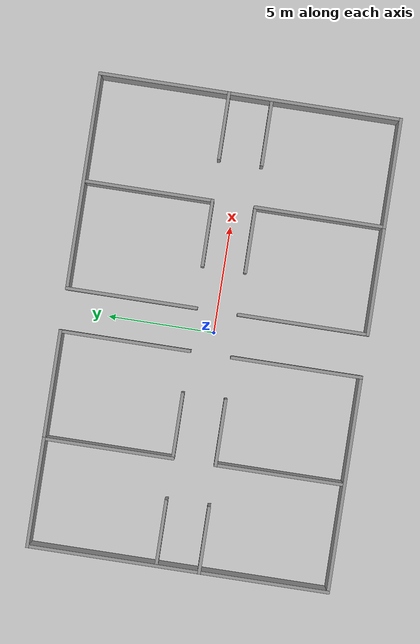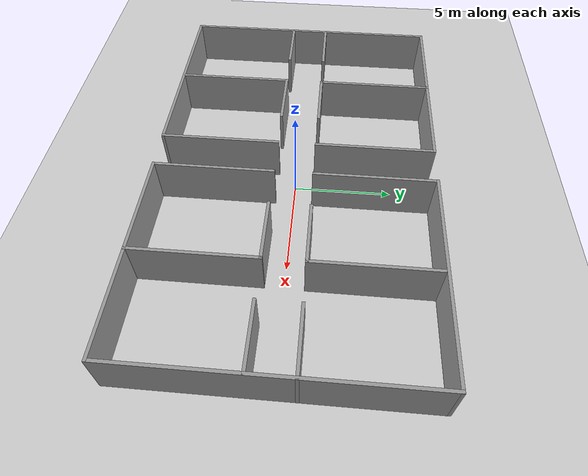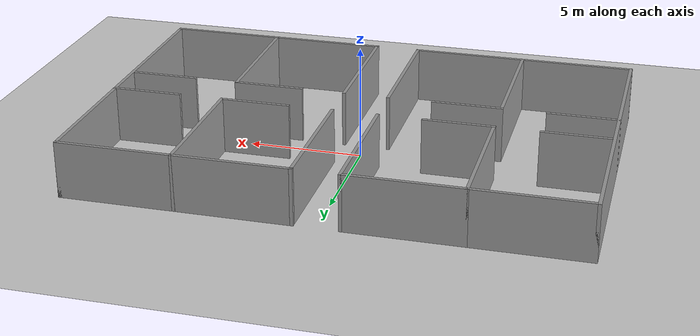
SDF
<?xml version='1.0'?>
<sdf version='1.6'>
  <world name='default'>
    <light name='sun' type='directional'>
      <cast_shadows>1</cast_shadows>
      <pose frame=''>0 0 10 0 -0 0</pose>
      <diffuse>0.8 0.8 0.8 1</diffuse>
      <specular>0.2 0.2 0.2 1</specular>
      <attenuation>
        <range>1000</range>
        <constant>0.9</constant>
        <linear>0.01</linear>
        <quadratic>0.001</quadratic>
      </attenuation>
      <direction>-0.5 0.1 -0.9</direction>
    </light>
<model name='ground_plane'>
      <static>1</static>
      <link name='link'>
        <collision name='collision'>
          <geometry>
            <plane>
              <normal>0 0 1</normal>
              <size>100 100</size>
            </plane>
          </geometry>
          <surface>
            <contact>
              <collide_bitmask>65535</collide_bitmask>
              <ode/>
            </contact>
            <friction>
              <ode>
                <mu>100</mu>
                <mu2>50</mu2>
              </ode>
              <torsional>
                <ode/>
              </torsional>
            </friction>
            <bounce/>
          </surface>
          <max_contacts>10</max_contacts>
        </collision>
        <visual name='visual'>
          <cast_shadows>0</cast_shadows>
          <geometry>
            <plane>
              <normal>0 0 1</normal>
              <size>100 100</size>
            </plane>
          </geometry>
          <material>
            <script>
              <uri>file://media/materials/scripts/gazebo.material</uri>
              <name>Gazebo/Grey</name>
            </script>
          </material>
        </visual>
        <self_collide>0</self_collide>
        <enable_wind>0</enable_wind>
        <kinematic>0</kinematic>
      </link>
    </model>
    <gravity>0 0 -9.8</gravity>
    <magnetic_field>6e-06 2.3e-05 -4.2e-05</magnetic_field>
    <atmosphere type='adiabatic'/>
    <physics name='default_physics' default='0' type='ode'>
      <max_step_size>0.001</max_step_size>
      <real_time_factor>1</real_time_factor>
      <real_time_update_rate>1000</real_time_update_rate>
    </physics>
    <scene>
      <ambient>0.4 0.4 0.4 1</ambient>
      <background>0.7 0.7 0.7 1</background>
      <shadows>1</shadows>
    </scene>
    <wind/>
    <spherical_coordinates>
      <surface_model>EARTH_WGS84</surface_model>
      <latitude_deg>0</latitude_deg>
      <longitude_deg>0</longitude_deg>
      <elevation>0</elevation>
      <heading_deg>0</heading_deg>
    </spherical_coordinates>
  <model name='map'>
    <model name='1'>
      <pose frame=''>-5 0 0 0 -0 0</pose>
      <link name='Wall_0'>
        <collision name='Wall_0_Collision'>
          <geometry>
            <box>
              <size>3.15 0.15 2.5</size>
            </box>
          </geometry>
          <pose frame=''>0 0 1.25 0 -0 0</pose>
        </collision>
        <visual name='Wall_0_Visual'>
          <pose frame=''>0 0 1.25 0 -0 0</pose>
          <geometry>
            <box>
              <size>3.15 0.15 2.5</size>
            </box>
          </geometry>
          <material>
            <script>
              <uri>file://media/materials/scripts/gazebo.material</uri>
              <name>Gazebo/Grey</name>
            </script>
            <ambient>1 1 1 1</ambient>
          </material>
          <meta>
            <layer>0</layer>
          </meta>
        </visual>
        <pose frame=''>-4.5 -1 0 0 -0 0</pose>
      </link>
      <link name='Wall_11'>
        <collision name='Wall_11_Collision'>
          <geometry>
            <box>
              <size>5.15 0.15 2.5</size>
            </box>
          </geometry>
          <pose frame=''>0 0 1.25 0 -0 0</pose>
        </collision>
        <visual name='Wall_11_Visual'>
          <pose frame=''>0 0 1.25 0 -0 0</pose>
          <geometry>
            <box>
              <size>5.15 0.15 2.5</size>
            </box>
          </geometry>
          <material>
            <script>
              <uri>file://media/materials/scripts/gazebo.material</uri>
              <name>Gazebo/Grey</name>
            </script>
            <ambient>1 1 1 1</ambient>
          </material>
          <meta>
            <layer>0</layer>
          </meta>
        </visual>
        <pose frame=''>-3.5 7 0 0 -0 0</pose>
      </link>
      <link name='Wall_12'>
        <collision name='Wall_12_Collision'>
          <geometry>
            <box>
              <size>6.15 0.15 2.5</size>
            </box>
          </geometry>
          <pose frame=''>0 0 1.25 0 -0 0</pose>
        </collision>
        <visual name='Wall_12_Visual'>
          <pose frame=''>0 0 1.25 0 -0 0</pose>
          <geometry>
            <box>
              <size>6.15 0.15 2.5</size>
            </box>
          </geometry>
          <material>
            <script>
              <uri>file://media/materials/scripts/gazebo.material</uri>
              <name>Gazebo/Grey</name>
            </script>
            <ambient>1 1 1 1</ambient>
          </material>
          <meta>
            <layer>0</layer>
          </meta>
        </visual>
        <pose frame=''>-1 4 0 0 -0 -1.5708</pose>
      </link>
      <link name='Wall_14'>
        <collision name='Wall_14_Collision'>
          <geometry>
            <box>
              <size>3.15 0.15 2.5</size>
            </box>
          </geometry>
          <pose frame=''>0 0 1.25 0 -0 0</pose>
        </collision>
        <visual name='Wall_14_Visual'>
          <pose frame=''>0 0 1.25 0 -0 0</pose>
          <geometry>
            <box>
              <size>3.15 0.15 2.5</size>
            </box>
          </geometry>
          <material>
            <script>
              <uri>file://media/materials/scripts/gazebo.material</uri>
              <name>Gazebo/Grey</name>
            </script>
            <ambient>1 1 1 1</ambient>
          </material>
          <meta>
            <layer>0</layer>
          </meta>
        </visual>
        <pose frame=''>0.5 1 0 0 -0 0</pose>
      </link>
      <link name='Wall_16'>
        <collision name='Wall_16_Collision'>
          <geometry>
            <box>
              <size>3.15 0.15 2.5</size>
            </box>
          </geometry>
          <pose frame=''>0 0 1.25 0 -0 0</pose>
        </collision>
        <visual name='Wall_16_Visual'>
          <pose frame=''>0 0 1.25 0 -0 0</pose>
          <geometry>
            <box>
              <size>3.15 0.15 2.5</size>
            </box>
          </geometry>
          <material>
            <script>
              <uri>file://media/materials/scripts/gazebo.material</uri>
              <name>Gazebo/Grey</name>
            </script>
            <ambient>1 1 1 1</ambient>
          </material>
          <meta>
            <layer>0</layer>
          </meta>
        </visual>
        <pose frame=''>0.5 -1 0 0 -0 0</pose>
      </link>
      <link name='Wall_18'>
        <collision name='Wall_18_Collision'>
          <geometry>
            <box>
              <size>5.15 0.15 2.5</size>
            </box>
          </geometry>
          <pose frame=''>0 0 1.25 0 -0 0</pose>
        </collision>
        <visual name='Wall_18_Visual'>
          <pose frame=''>0 0 1.25 0 -0 0</pose>
          <geometry>
            <box>
              <size>5.15 0.15 2.5</size>
            </box>
          </geometry>
          <material>
            <script>
              <uri>file://media/materials/scripts/gazebo.material</uri>
              <name>Gazebo/Grey</name>
            </script>
            <ambient>1 1 1 1</ambient>
          </material>
          <meta>
            <layer>0</layer>
          </meta>
        </visual>
        <pose frame=''>1.5 7 0 0 -0 0</pose>
      </link>
      <link name='Wall_2'>
        <collision name='Wall_2_Collision'>
          <geometry>
            <box>
              <size>14.15 0.15 2.5</size>
            </box>
          </geometry>
          <pose frame=''>0 0 1.25 0 -0 0</pose>
        </collision>
        <visual name='Wall_2_Visual'>
          <pose frame=''>0 0 1.25 0 -0 0</pose>
          <geometry>
            <box>
              <size>14.15 0.15 2.5</size>
            </box>
          </geometry>
          <material>
            <script>
              <uri>file://media/materials/scripts/gazebo.material</uri>
              <name>Gazebo/Grey</name>
            </script>
            <ambient>1 1 1 1</ambient>
          </material>
          <meta>
            <layer>0</layer>
          </meta>
        </visual>
        <pose frame=''>-6 0 0 0 -0 1.5708</pose>
      </link>
      <link name='Wall_20'>
        <collision name='Wall_20_Collision'>
          <geometry>
            <box>
              <size>6.15 0.15 2.5</size>
            </box>
          </geometry>
          <pose frame=''>0 0 1.25 0 -0 0</pose>
        </collision>
        <visual name='Wall_20_Visual'>
          <pose frame=''>0 0 1.25 0 -0 0</pose>
          <geometry>
            <box>
              <size>6.15 0.15 2.5</size>
            </box>
          </geometry>
          <material>
            <script>
              <uri>file://media/materials/scripts/gazebo.material</uri>
              <name>Gazebo/Grey</name>
            </script>
            <ambient>1 1 1 1</ambient>
          </material>
          <meta>
            <layer>0</layer>
          </meta>
        </visual>
        <pose frame=''>4 4 0 0 -0 -1.5708</pose>
      </link>
      <link name='Wall_22'>
        <collision name='Wall_22_Collision'>
          <geometry>
            <box>
              <size>6.15 0.15 2.5</size>
            </box>
          </geometry>
          <pose frame=''>0 0 1.25 0 -0 0</pose>
        </collision>
        <visual name='Wall_22_Visual'>
          <pose frame=''>0 0 1.25 0 -0 0</pose>
          <geometry>
            <box>
              <size>6.15 0.15 2.5</size>
            </box>
          </geometry>
          <material>
            <script>
              <uri>file://media/materials/scripts/gazebo.material</uri>
              <name>Gazebo/Grey</name>
            </script>
            <ambient>1 1 1 1</ambient>
          </material>
          <meta>
            <layer>0</layer>
          </meta>
        </visual>
        <pose frame=''>4 -4 0 0 -0 -1.5708</pose>
      </link>
      <link name='Wall_4'>
        <collision name='Wall_4_Collision'>
          <geometry>
            <box>
              <size>3.15 0.15 2.5</size>
            </box>
          </geometry>
          <pose frame=''>0 0 1.25 0 -0 0</pose>
        </collision>
        <visual name='Wall_4_Visual'>
          <pose frame=''>0 0 1.25 0 -0 0</pose>
          <geometry>
            <box>
              <size>3.15 0.15 2.5</size>
            </box>
          </geometry>
          <material>
            <script>
              <uri>file://media/materials/scripts/gazebo.material</uri>
              <name>Gazebo/Grey</name>
            </script>
            <ambient>1 1 1 1</ambient>
          </material>
          <meta>
            <layer>0</layer>
          </meta>
        </visual>
        <pose frame=''>-4.5 1 0 0 -0 0</pose>
      </link>
      <link name='Wall_6'>
        <collision name='Wall_6_Collision'>
          <geometry>
            <box>
              <size>10.15 0.15 2.5</size>
            </box>
          </geometry>
          <pose frame=''>0 0 1.25 0 -0 0</pose>
        </collision>
        <visual name='Wall_6_Visual'>
          <pose frame=''>0 0 1.25 0 -0 0</pose>
          <geometry>
            <box>
              <size>10.15 0.15 2.5</size>
            </box>
          </geometry>
          <material>
            <script>
              <uri>file://media/materials/scripts/gazebo.material</uri>
              <name>Gazebo/Grey</name>
            </script>
            <ambient>1 1 1 1</ambient>
          </material>
          <meta>
            <layer>0</layer>
          </meta>
        </visual>
        <pose frame=''>-1 -7 0 0 -0 0</pose>
      </link>
      <link name='Wall_9'>
        <collision name='Wall_9_Collision'>
          <geometry>
            <box>
              <size>6.15 0.15 2.5</size>
            </box>
          </geometry>
          <pose frame=''>0 0 1.25 0 -0 0</pose>
        </collision>
        <visual name='Wall_9_Visual'>
          <pose frame=''>0 0 1.25 0 -0 0</pose>
          <geometry>
            <box>
              <size>6.15 0.15 2.5</size>
            </box>
          </geometry>
          <material>
            <script>
              <uri>file://media/materials/scripts/gazebo.material</uri>
              <name>Gazebo/Grey</name>
            </script>
            <ambient>1 1 1 1</ambient>
          </material>
          <meta>
            <layer>0</layer>
          </meta>
        </visual>
        <pose frame=''>-1 -4 0 0 -0 1.5708</pose>
      </link>
      <static>1</static>
    </model>
    <model name='1_0'>
      <pose frame=''>5 0 0 0 -0 3.14159</pose>
      <link name='Wall_0'>
        <collision name='Wall_0_Collision'>
          <geometry>
            <box>
              <size>3.15 0.15 2.5</size>
            </box>
          </geometry>
          <pose frame=''>0 0 1.25 0 -0 0</pose>
        </collision>
        <visual name='Wall_0_Visual'>
          <pose frame=''>0 0 1.25 0 -0 0</pose>
          <geometry>
            <box>
              <size>3.15 0.15 2.5</size>
            </box>
          </geometry>
          <material>
            <script>
              <uri>file://media/materials/scripts/gazebo.material</uri>
              <name>Gazebo/Grey</name>
            </script>
            <ambient>1 1 1 1</ambient>
          </material>
          <meta>
            <layer>0</layer>
          </meta>
        </visual>
        <pose frame=''>-4.5 -1 0 0 -0 0</pose>
      </link>
      <link name='Wall_11'>
        <collision name='Wall_11_Collision'>
          <geometry>
            <box>
              <size>5.15 0.15 2.5</size>
            </box>
          </geometry>
          <pose frame=''>0 0 1.25 0 -0 0</pose>
        </collision>
        <visual name='Wall_11_Visual'>
          <pose frame=''>0 0 1.25 0 -0 0</pose>
          <geometry>
            <box>
              <size>5.15 0.15 2.5</size>
            </box>
          </geometry>
          <material>
            <script>
              <uri>file://media/materials/scripts/gazebo.material</uri>
              <name>Gazebo/Grey</name>
            </script>
            <ambient>1 1 1 1</ambient>
          </material>
          <meta>
            <layer>0</layer>
          </meta>
        </visual>
        <pose frame=''>-3.5 7 0 0 -0 0</pose>
      </link>
      <link name='Wall_12'>
        <collision name='Wall_12_Collision'>
          <geometry>
            <box>
              <size>6.15 0.15 2.5</size>
            </box>
          </geometry>
          <pose frame=''>0 0 1.25 0 -0 0</pose>
        </collision>
        <visual name='Wall_12_Visual'>
          <pose frame=''>0 0 1.25 0 -0 0</pose>
          <geometry>
            <box>
              <size>6.15 0.15 2.5</size>
            </box>
          </geometry>
          <material>
            <script>
              <uri>file://media/materials/scripts/gazebo.material</uri>
              <name>Gazebo/Grey</name>
            </script>
            <ambient>1 1 1 1</ambient>
          </material>
          <meta>
            <layer>0</layer>
          </meta>
        </visual>
        <pose frame=''>-1 4 0 0 -0 -1.5708</pose>
      </link>
      <link name='Wall_14'>
        <collision name='Wall_14_Collision'>
          <geometry>
            <box>
              <size>3.15 0.15 2.5</size>
            </box>
          </geometry>
          <pose frame=''>0 0 1.25 0 -0 0</pose>
        </collision>
        <visual name='Wall_14_Visual'>
          <pose frame=''>0 0 1.25 0 -0 0</pose>
          <geometry>
            <box>
              <size>3.15 0.15 2.5</size>
            </box>
          </geometry>
          <material>
            <script>
              <uri>file://media/materials/scripts/gazebo.material</uri>
              <name>Gazebo/Grey</name>
            </script>
            <ambient>1 1 1 1</ambient>
          </material>
          <meta>
            <layer>0</layer>
          </meta>
        </visual>
        <pose frame=''>0.5 1 0 0 -0 0</pose>
      </link>
      <link name='Wall_16'>
        <collision name='Wall_16_Collision'>
          <geometry>
            <box>
              <size>3.15 0.15 2.5</size>
            </box>
          </geometry>
          <pose frame=''>0 0 1.25 0 -0 0</pose>
        </collision>
        <visual name='Wall_16_Visual'>
          <pose frame=''>0 0 1.25 0 -0 0</pose>
          <geometry>
            <box>
              <size>3.15 0.15 2.5</size>
            </box>
          </geometry>
          <material>
            <script>
              <uri>file://media/materials/scripts/gazebo.material</uri>
              <name>Gazebo/Grey</name>
            </script>
            <ambient>1 1 1 1</ambient>
          </material>
          <meta>
            <layer>0</layer>
          </meta>
        </visual>
        <pose frame=''>0.5 -1 0 0 -0 0</pose>
      </link>
      <link name='Wall_18'>
        <collision name='Wall_18_Collision'>
          <geometry>
            <box>
              <size>5.15 0.15 2.5</size>
            </box>
          </geometry>
          <pose frame=''>0 0 1.25 0 -0 0</pose>
        </collision>
        <visual name='Wall_18_Visual'>
          <pose frame=''>0 0 1.25 0 -0 0</pose>
          <geometry>
            <box>
              <size>5.15 0.15 2.5</size>
            </box>
          </geometry>
          <material>
            <script>
              <uri>file://media/materials/scripts/gazebo.material</uri>
              <name>Gazebo/Grey</name>
            </script>
            <ambient>1 1 1 1</ambient>
          </material>
          <meta>
            <layer>0</layer>
          </meta>
        </visual>
        <pose frame=''>1.5 7 0 0 -0 0</pose>
      </link>
      <link name='Wall_2'>
        <collision name='Wall_2_Collision'>
          <geometry>
            <box>
              <size>14.15 0.15 2.5</size>
            </box>
          </geometry>
          <pose frame=''>0 0 1.25 0 -0 0</pose>
        </collision>
        <visual name='Wall_2_Visual'>
          <pose frame=''>0 0 1.25 0 -0 0</pose>
          <geometry>
            <box>
              <size>14.15 0.15 2.5</size>
            </box>
          </geometry>
          <material>
            <script>
              <uri>file://media/materials/scripts/gazebo.material</uri>
              <name>Gazebo/Grey</name>
            </script>
            <ambient>1 1 1 1</ambient>
          </material>
          <meta>
            <layer>0</layer>
          </meta>
        </visual>
        <pose frame=''>-6 0 0 0 -0 1.5708</pose>
      </link>
      <link name='Wall_20'>
        <collision name='Wall_20_Collision'>
          <geometry>
            <box>
              <size>6.15 0.15 2.5</size>
            </box>
          </geometry>
          <pose frame=''>0 0 1.25 0 -0 0</pose>
        </collision>
        <visual name='Wall_20_Visual'>
          <pose frame=''>0 0 1.25 0 -0 0</pose>
          <geometry>
            <box>
              <size>6.15 0.15 2.5</size>
            </box>
          </geometry>
          <material>
            <script>
              <uri>file://media/materials/scripts/gazebo.material</uri>
              <name>Gazebo/Grey</name>
            </script>
            <ambient>1 1 1 1</ambient>
          </material>
          <meta>
            <layer>0</layer>
          </meta>
        </visual>
        <pose frame=''>4 4 0 0 -0 -1.5708</pose>
      </link>
      <link name='Wall_22'>
        <collision name='Wall_22_Collision'>
          <geometry>
            <box>
              <size>6.15 0.15 2.5</size>
            </box>
          </geometry>
          <pose frame=''>0 0 1.25 0 -0 0</pose>
        </collision>
        <visual name='Wall_22_Visual'>
          <pose frame=''>0 0 1.25 0 -0 0</pose>
          <geometry>
            <box>
              <size>6.15 0.15 2.5</size>
            </box>
          </geometry>
          <material>
            <script>
              <uri>file://media/materials/scripts/gazebo.material</uri>
              <name>Gazebo/Grey</name>
            </script>
            <ambient>1 1 1 1</ambient>
          </material>
          <meta>
            <layer>0</layer>
          </meta>
        </visual>
        <pose frame=''>4 -4 0 0 -0 -1.5708</pose>
      </link>
      <link name='Wall_4'>
        <collision name='Wall_4_Collision'>
          <geometry>
            <box>
              <size>3.15 0.15 2.5</size>
            </box>
          </geometry>
          <pose frame=''>0 0 1.25 0 -0 0</pose>
        </collision>
        <visual name='Wall_4_Visual'>
          <pose frame=''>0 0 1.25 0 -0 0</pose>
          <geometry>
            <box>
              <size>3.15 0.15 2.5</size>
            </box>
          </geometry>
          <material>
            <script>
              <uri>file://media/materials/scripts/gazebo.material</uri>
              <name>Gazebo/Grey</name>
            </script>
            <ambient>1 1 1 1</ambient>
          </material>
          <meta>
            <layer>0</layer>
          </meta>
        </visual>
        <pose frame=''>-4.5 1 0 0 -0 0</pose>
      </link>
      <link name='Wall_6'>
        <collision name='Wall_6_Collision'>
          <geometry>
            <box>
              <size>10.15 0.15 2.5</size>
            </box>
          </geometry>
          <pose frame=''>0 0 1.25 0 -0 0</pose>
        </collision>
        <visual name='Wall_6_Visual'>
          <pose frame=''>0 0 1.25 0 -0 0</pose>
          <geometry>
            <box>
              <size>10.15 0.15 2.5</size>
            </box>
          </geometry>
          <material>
            <script>
              <uri>file://media/materials/scripts/gazebo.material</uri>
              <name>Gazebo/Grey</name>
            </script>
            <ambient>1 1 1 1</ambient>
          </material>
          <meta>
            <layer>0</layer>
          </meta>
        </visual>
        <pose frame=''>-1 -7 0 0 -0 0</pose>
      </link>
      <link name='Wall_9'>
        <collision name='Wall_9_Collision'>
          <geometry>
            <box>
              <size>6.15 0.15 2.5</size>
            </box>
          </geometry>
          <pose frame=''>0 0 1.25 0 -0 0</pose>
        </collision>
        <visual name='Wall_9_Visual'>
          <pose frame=''>0 0 1.25 0 -0 0</pose>
          <geometry>
            <box>
              <size>6.15 0.15 2.5</size>
            </box>
          </geometry>
          <material>
            <script>
              <uri>file://media/materials/scripts/gazebo.material</uri>
              <name>Gazebo/Grey</name>
            </script>
            <ambient>1 1 1 1</ambient>
          </material>
          <meta>
            <layer>0</layer>
          </meta>
        </visual>
        <pose frame=''>-1 -4 0 0 -0 1.5708</pose>
      </link>
      <static>1</static>
    </model>
    <static>0</static>
    <allow_auto_disable>1</allow_auto_disable>
  </model>
    <gui fullscreen='0'>
      <camera name='user_camera'>
        <pose frame=''>9.38162 -10.2689 4.2245 0 0.275643 2.35619</pose>
        <view_controller>orbit</view_controller>
        <projection_type>perspective</projection_type>
      </camera>
    </gui>
  </world>
</sdf>
